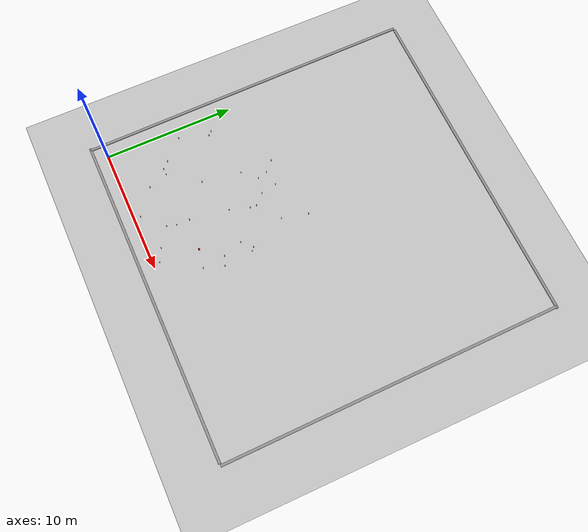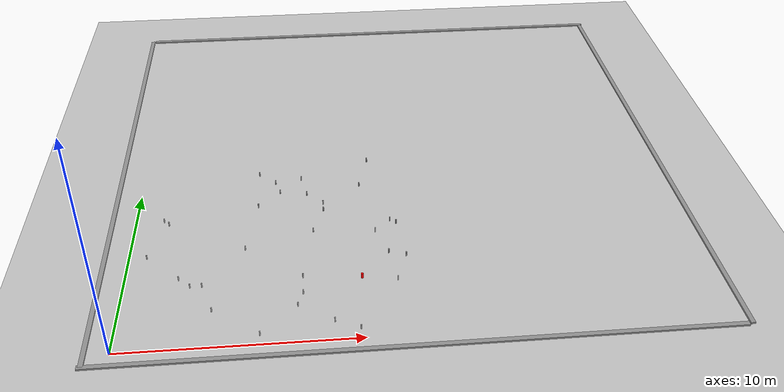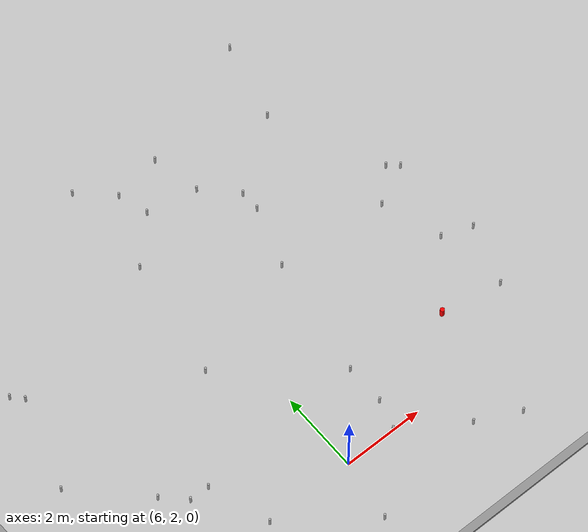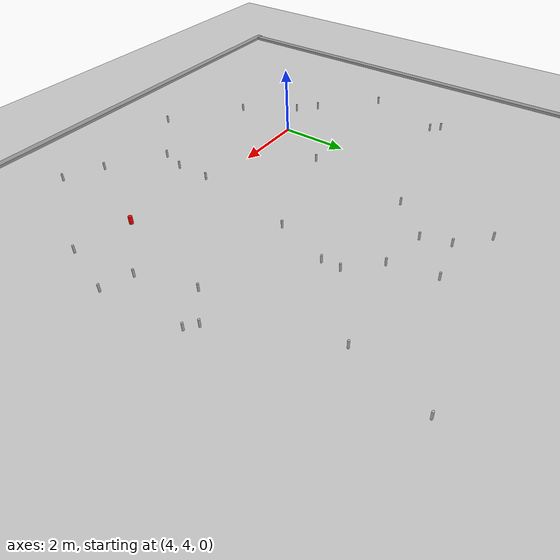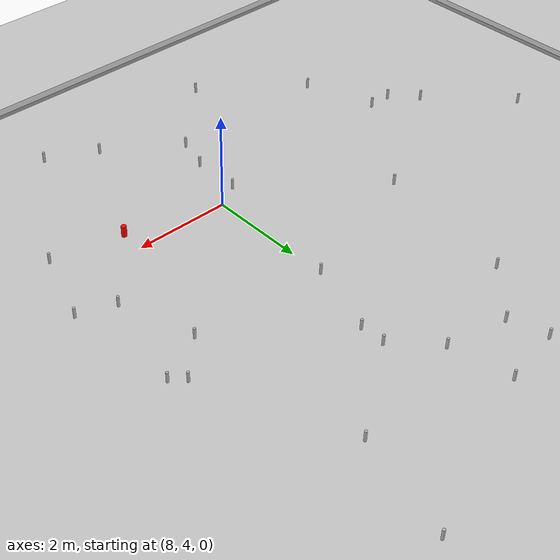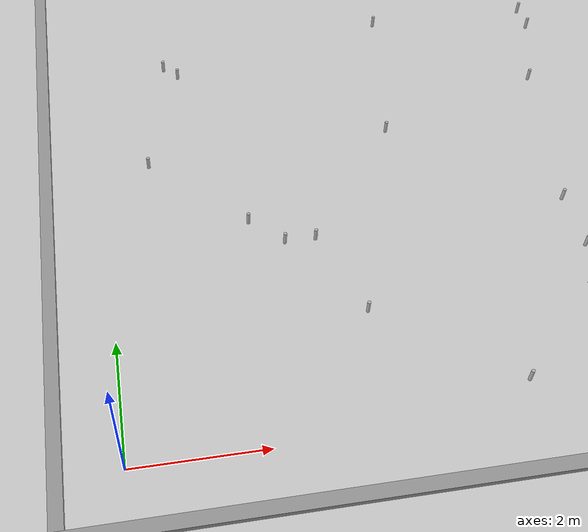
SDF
<sdf version="1.6">
 <world name="default">
  <light name="sun" type="directional">
   <pose>0 0 10 0 -0 0</pose>
   <diffuse>0.8 0.8 0.8 1</diffuse>
   <specular>0.1 0.1 0.1 1</specular>
   <attenuation>
    <range>1000</range>
    <constant>0.9</constant>
    <linear>0.01</linear>
    <quadratic>0.001</quadratic>
   </attenuation>
   <direction>-0.5 0.5 -1</direction>
  </light>
  <model name="ground_plane">
   <static>1</static>
   <link name="link">
    <collision name="collision">
     <geometry><plane><normal>0 0 1</normal><size>100 100</size></plane></geometry>
     <surface><friction><ode><mu>100</mu><mu2>50</mu2></ode></friction></surface>
    </collision>
    <visual name="visual">
     <cast_shadows>0</cast_shadows>
     <geometry><plane><normal>0 0 1</normal><size>100 100</size></plane></geometry>
     <material>
      <script><uri>file://media/materials/scripts/gazebo.material</uri><name>Gazebo/Grey</name></script>
     </material>
    </visual>
   </link>
  </model>
  <gravity>0 0 -9.8</gravity>
  <magnetic_field>6e-06 2.3e-05 -4.2e-05</magnetic_field>
  <atmosphere type="adiabatic"/>
  <physics name="default_physics" default="0" type="ode">
   <max_step_size>0.001</max_step_size>
   <real_time_factor>1</real_time_factor>
   <real_time_update_rate>1000</real_time_update_rate>
  </physics>
  <scene><ambient>0.4 0.4 0.4 1</ambient><background>0.7 0.7 0.7 1</background><shadows>1</shadows></scene>
  <spherical_coordinates>
   <surface_model>EARTH_WGS84</surface_model>
   <latitude_deg>0</latitude_deg>
   <longitude_deg>0</longitude_deg>
   <elevation>0</elevation>
   <heading_deg>0</heading_deg>
  </spherical_coordinates>
  <model name="goal">
   <static>0</static>
   <link name="link">
    <pose>0 0 0.115 0 -0 0</pose>
    <inertial>
     <mass>0.0005</mass>
     <inertia><ixx>0.00058</ixx><ixy>0</ixy><ixz>0</ixz><iyy>0.00058</iyy><iyz>0</iyz><izz>0.00019</izz></inertia>
    </inertial>
    <visual name="visual">
     <geometry><cylinder><radius>0.055</radius><length>0.23</length></cylinder></geometry>
     <material>
      <script>
       <uri>model://beer/materials/scripts</uri>
       <uri>model://beer/materials/textures</uri>
       <name>Beer/Diffuse</name>
      </script>
      <ambient>1 0 0 1</ambient>
      <diffuse>1 0 0 1</diffuse>
      <specular>0 0 0 1</specular>
      <emissive>0 0 0 1</emissive>
      <shader type="vertex"><normal_map>__default__</normal_map></shader>
     </material>
    </visual>
    <collision name="collision">
     <geometry><cylinder><radius>0.055</radius><length>0.23</length></cylinder></geometry>
     <surface>
      <friction>
       <ode><mu>1</mu><mu2>1</mu2><fdir1>0 0 0</fdir1><slip1>0</slip1><slip2>0</slip2></ode>
       <torsional>
        <coefficient>1</coefficient>
        <patch_radius>0</patch_radius>
        <surface_radius>0</surface_radius>
        <use_patch_radius>1</use_patch_radius>
        <ode><slip>0</slip></ode>
       </torsional>
      </friction>
      <bounce><restitution_coefficient>0</restitution_coefficient><threshold>1e+06</threshold></bounce>
      <contact>
       <collide_without_contact>0</collide_without_contact>
       <collide_without_contact_bitmask>1</collide_without_contact_bitmask>
       <collide_bitmask>1</collide_bitmask>
       <ode>
        <soft_cfm>0</soft_cfm>
        <soft_erp>0.2</soft_erp>
        <kp>1e+13</kp>
        <kd>1</kd>
        <max_vel>0.01</max_vel>
        <min_depth>0</min_depth>
       </ode>
       <bullet>
        <split_impulse>1</split_impulse>
        <split_impulse_penetration_threshold>-0.01</split_impulse_penetration_threshold>
        <soft_cfm>0</soft_cfm>
        <soft_erp>0.2</soft_erp>
        <kp>1e+13</kp>
        <kd>1</kd>
       </bullet>
      </contact>
     </surface>
    </collision>
   </link>
   <static>0</static>
   <pose>10.0 3.5 -9e-06 -1e-06 -4e-06 0</pose>
  </model>
  <model name="wall1">
   <static>1</static>
   <link name="link">
    <pose>0 0 0.42 0 -0 0</pose>
    <collision name="collision"><geometry><box><size>26 0.2 0.084</size></box></geometry></collision>
    <visual name="visual">
     <cast_shadows>0</cast_shadows>
     <geometry><box><size>26 0.2 0.084</size></box></geometry>
     <material>
      <script>
       <uri>model://grey_wall/materials/scripts</uri>
       <uri>model://grey_wall/materials/textures</uri>
       <name>vrc/grey_wall</name>
      </script>
     </material>
    </visual>
   </link>
   <pose>-1 12.0 0 0 -0 -1.55905</pose>
  </model>
  <model name="wall2">
   <static>1</static>
   <link name="link">
    <pose>0 0 0.42 0 -0 0</pose>
    <collision name="collision"><geometry><box><size>26 0.2 0.084</size></box></geometry></collision>
    <visual name="visual">
     <cast_shadows>0</cast_shadows>
     <geometry><box><size>26 0.2 0.084</size></box></geometry>
     <material>
      <script>
       <uri>model://grey_wall/materials/scripts</uri>
       <uri>model://grey_wall/materials/textures</uri>
       <name>vrc/grey_wall</name>
      </script>
     </material>
    </visual>
   </link>
   <pose>12.0 25.0 0 0 -0 0</pose>
  </model>
  <model name="wall3">
   <static>1</static>
   <link name="link">
    <pose>0 0 0.42 0 -0 0</pose>
    <collision name="collision"><geometry><box><size>26 0.2 0.084</size></box></geometry></collision>
    <visual name="visual">
     <cast_shadows>0</cast_shadows>
     <geometry><box><size>26 0.2 0.084</size></box></geometry>
     <material>
      <script>
       <uri>model://grey_wall/materials/scripts</uri>
       <uri>model://grey_wall/materials/textures</uri>
       <name>vrc/grey_wall</name>
      </script>
     </material>
    </visual>
   </link>
   <pose>25.0 12.0 0 0 -0 -1.55905</pose>
  </model>
  <model name="wall4">
   <static>1</static>
   <link name="link">
    <pose>0 0 0.42 0 -0 0</pose>
    <collision name="collision"><geometry><box><size>26 0.2 0.084</size></box></geometry></collision>
    <visual name="visual">
     <cast_shadows>0</cast_shadows>
     <geometry><box><size>26 0.2 0.084</size></box></geometry>
     <material>
      <script>
       <uri>model://grey_wall/materials/scripts</uri>
       <uri>model://grey_wall/materials/textures</uri>
       <name>vrc/grey_wall</name>
      </script>
     </material>
    </visual>
   </link>
   <pose>12.0 -1 0 0 -0 0</pose>
  </model>
  <model name="can_1">
   <link name="link">
    <pose>0 0 0.115 0 -0 0</pose>
    <inertial>
     <mass>0.39</mass>
     <inertia><ixx>0.00058</ixx><ixy>0</ixy><ixz>0</ixz><iyy>0.00058</iyy><iyz>0</iyz><izz>0.00019</izz></inertia>
    </inertial>
    <collision name="collision">
     <geometry><cylinder><radius>0.0275</radius><length>0.23</length></cylinder></geometry>
    </collision>
    <visual name="visual">
     <geometry><cylinder><radius>0.0275</radius><length>0.23</length></cylinder></geometry>
     <material>
      <script>
       <uri>model://beer/materials/scripts</uri>
       <uri>model://beer/materials/textures</uri>
       <name>Beer/Diffuse</name>
      </script>
     </material>
    </visual>
   </link>
   <pose>1.2579692069701476 8.0 -2e-06 1e-06 0 -9.5e-05</pose>
  </model>
  <model name="can_2">
   <link name="link">
    <pose>0 0 0.115 0 -0 0</pose>
    <inertial>
     <mass>0.39</mass>
     <inertia><ixx>0.00058</ixx><ixy>0</ixy><ixz>0</ixz><iyy>0.00058</iyy><iyz>0</iyz><izz>0.00019</izz></inertia>
    </inertial>
    <collision name="collision">
     <geometry><cylinder><radius>0.0275</radius><length>0.23</length></cylinder></geometry>
    </collision>
    <visual name="visual">
     <geometry><cylinder><radius>0.0275</radius><length>0.23</length></cylinder></geometry>
     <material>
      <script>
       <uri>model://beer/materials/scripts</uri>
       <uri>model://beer/materials/textures</uri>
       <name>Beer/Diffuse</name>
      </script>
     </material>
    </visual>
   </link>
   <pose>2.780565949185663 3.5 -2e-06 1e-06 0 -9.5e-05</pose>
  </model>
  <model name="can_3">
   <link name="link">
    <pose>0 0 0.115 0 -0 0</pose>
    <inertial>
     <mass>0.39</mass>
     <inertia><ixx>0.00058</ixx><ixy>0</ixy><ixz>0</ixz><iyy>0.00058</iyy><iyz>0</iyz><izz>0.00019</izz></inertia>
    </inertial>
    <collision name="collision">
     <geometry><cylinder><radius>0.0275</radius><length>0.23</length></cylinder></geometry>
    </collision>
    <visual name="visual">
     <geometry><cylinder><radius>0.0275</radius><length>0.23</length></cylinder></geometry>
     <material>
      <script>
       <uri>model://beer/materials/scripts</uri>
       <uri>model://beer/materials/textures</uri>
       <name>Beer/Diffuse</name>
      </script>
     </material>
    </visual>
   </link>
   <pose>10.77142383168097 6.5 -2e-06 1e-06 0 -9.5e-05</pose>
  </model>
  <model name="can_4">
   <link name="link">
    <pose>0 0 0.115 0 -0 0</pose>
    <inertial>
     <mass>0.39</mass>
     <inertia><ixx>0.00058</ixx><ixy>0</ixy><ixz>0</ixz><iyy>0.00058</iyy><iyz>0</iyz><izz>0.00019</izz></inertia>
    </inertial>
    <collision name="collision">
     <geometry><cylinder><radius>0.0275</radius><length>0.23</length></cylinder></geometry>
    </collision>
    <visual name="visual">
     <geometry><cylinder><radius>0.0275</radius><length>0.23</length></cylinder></geometry>
     <material>
      <script>
       <uri>model://beer/materials/scripts</uri>
       <uri>model://beer/materials/textures</uri>
       <name>Beer/Diffuse</name>
      </script>
     </material>
    </visual>
   </link>
   <pose>5.5 8.73675078889169 -2e-06 1e-06 0 -9.5e-05</pose>
  </model>
  <model name="can_5">
   <link name="link">
    <pose>0 0 0.115 0 -0 0</pose>
    <inertial>
     <mass>0.39</mass>
     <inertia><ixx>0.00058</ixx><ixy>0</ixy><ixz>0</ixz><iyy>0.00058</iyy><iyz>0</iyz><izz>0.00019</izz></inertia>
    </inertial>
    <collision name="collision">
     <geometry><cylinder><radius>0.0275</radius><length>0.23</length></cylinder></geometry>
    </collision>
    <visual name="visual">
     <geometry><cylinder><radius>0.0275</radius><length>0.23</length></cylinder></geometry>
     <material>
      <script>
       <uri>model://beer/materials/scripts</uri>
       <uri>model://beer/materials/textures</uri>
       <name>Beer/Diffuse</name>
      </script>
     </material>
    </visual>
   </link>
   <pose>6.2801286656901585 10.5 -2e-06 1e-06 0 -9.5e-05</pose>
  </model>
  <model name="can_6">
   <link name="link">
    <pose>0 0 0.115 0 -0 0</pose>
    <inertial>
     <mass>0.39</mass>
     <inertia><ixx>0.00058</ixx><ixy>0</ixy><ixz>0</ixz><iyy>0.00058</iyy><iyz>0</iyz><izz>0.00019</izz></inertia>
    </inertial>
    <collision name="collision">
     <geometry><cylinder><radius>0.0275</radius><length>0.23</length></cylinder></geometry>
    </collision>
    <visual name="visual">
     <geometry><cylinder><radius>0.0275</radius><length>0.23</length></cylinder></geometry>
     <material>
      <script>
       <uri>model://beer/materials/scripts</uri>
       <uri>model://beer/materials/textures</uri>
       <name>Beer/Diffuse</name>
      </script>
     </material>
    </visual>
   </link>
   <pose>10.255738920285136 10.0 -2e-06 1e-06 0 -9.5e-05</pose>
  </model>
  <model name="can_7">
   <link name="link">
    <pose>0 0 0.115 0 -0 0</pose>
    <inertial>
     <mass>0.39</mass>
     <inertia><ixx>0.00058</ixx><ixy>0</ixy><ixz>0</ixz><iyy>0.00058</iyy><iyz>0</iyz><izz>0.00019</izz></inertia>
    </inertial>
    <collision name="collision">
     <geometry><cylinder><radius>0.0275</radius><length>0.23</length></cylinder></geometry>
    </collision>
    <visual name="visual">
     <geometry><cylinder><radius>0.0275</radius><length>0.23</length></cylinder></geometry>
     <material>
      <script>
       <uri>model://beer/materials/scripts</uri>
       <uri>model://beer/materials/textures</uri>
       <name>Beer/Diffuse</name>
      </script>
     </material>
    </visual>
   </link>
   <pose>8.75039712617744 1.0 -2e-06 1e-06 0 -9.5e-05</pose>
  </model>
  <model name="can_8">
   <link name="link">
    <pose>0 0 0.115 0 -0 0</pose>
    <inertial>
     <mass>0.39</mass>
     <inertia><ixx>0.00058</ixx><ixy>0</ixy><ixz>0</ixz><iyy>0.00058</iyy><iyz>0</iyz><izz>0.00019</izz></inertia>
    </inertial>
    <collision name="collision">
     <geometry><cylinder><radius>0.0275</radius><length>0.23</length></cylinder></geometry>
    </collision>
    <visual name="visual">
     <geometry><cylinder><radius>0.0275</radius><length>0.23</length></cylinder></geometry>
     <material>
      <script>
       <uri>model://beer/materials/scripts</uri>
       <uri>model://beer/materials/textures</uri>
       <name>Beer/Diffuse</name>
      </script>
     </material>
    </visual>
   </link>
   <pose>2.2694477915008493 4.0 -2e-06 1e-06 0 -9.5e-05</pose>
  </model>
  <model name="can_9">
   <link name="link">
    <pose>0 0 0.115 0 -0 0</pose>
    <inertial>
     <mass>0.39</mass>
     <inertia><ixx>0.00058</ixx><ixy>0</ixy><ixz>0</ixz><iyy>0.00058</iyy><iyz>0</iyz><izz>0.00019</izz></inertia>
    </inertial>
    <collision name="collision">
     <geometry><cylinder><radius>0.0275</radius><length>0.23</length></cylinder></geometry>
    </collision>
    <visual name="visual">
     <geometry><cylinder><radius>0.0275</radius><length>0.23</length></cylinder></geometry>
     <material>
      <script>
       <uri>model://beer/materials/scripts</uri>
       <uri>model://beer/materials/textures</uri>
       <name>Beer/Diffuse</name>
      </script>
     </material>
    </visual>
   </link>
   <pose>5.765223673706494 0.5 -2e-06 1e-06 0 -9.5e-05</pose>
  </model>
  <model name="can_10">
   <link name="link">
    <pose>0 0 0.115 0 -0 0</pose>
    <inertial>
     <mass>0.39</mass>
     <inertia><ixx>0.00058</ixx><ixy>0</ixy><ixz>0</ixz><iyy>0.00058</iyy><iyz>0</iyz><izz>0.00019</izz></inertia>
    </inertial>
    <collision name="collision">
     <geometry><cylinder><radius>0.0275</radius><length>0.23</length></cylinder></geometry>
    </collision>
    <visual name="visual">
     <geometry><cylinder><radius>0.0275</radius><length>0.23</length></cylinder></geometry>
     <material>
      <script>
       <uri>model://beer/materials/scripts</uri>
       <uri>model://beer/materials/textures</uri>
       <name>Beer/Diffuse</name>
      </script>
     </material>
    </visual>
   </link>
   <pose>0.7715694979395369 5.5 -2e-06 1e-06 0 -9.5e-05</pose>
  </model>
  <model name="can_11">
   <link name="link">
    <pose>0 0 0.115 0 -0 0</pose>
    <inertial>
     <mass>0.39</mass>
     <inertia><ixx>0.00058</ixx><ixy>0</ixy><ixz>0</ixz><iyy>0.00058</iyy><iyz>0</iyz><izz>0.00019</izz></inertia>
    </inertial>
    <collision name="collision">
     <geometry><cylinder><radius>0.0275</radius><length>0.23</length></cylinder></geometry>
    </collision>
    <visual name="visual">
     <geometry><cylinder><radius>0.0275</radius><length>0.23</length></cylinder></geometry>
     <material>
      <script>
       <uri>model://beer/materials/scripts</uri>
       <uri>model://beer/materials/textures</uri>
       <name>Beer/Diffuse</name>
      </script>
     </material>
    </visual>
   </link>
   <pose>3.2779878772983664 3.5 -2e-06 1e-06 0 -9.5e-05</pose>
  </model>
  <model name="can_12">
   <link name="link">
    <pose>0 0 0.115 0 -0 0</pose>
    <inertial>
     <mass>0.39</mass>
     <inertia><ixx>0.00058</ixx><ixy>0</ixy><ixz>0</ixz><iyy>0.00058</iyy><iyz>0</iyz><izz>0.00019</izz></inertia>
    </inertial>
    <collision name="collision">
     <geometry><cylinder><radius>0.0275</radius><length>0.23</length></cylinder></geometry>
    </collision>
    <visual name="visual">
     <geometry><cylinder><radius>0.0275</radius><length>0.23</length></cylinder></geometry>
     <material>
      <script>
       <uri>model://beer/materials/scripts</uri>
       <uri>model://beer/materials/textures</uri>
       <name>Beer/Diffuse</name>
      </script>
     </material>
    </visual>
   </link>
   <pose>8.5 8.224149192978134 -2e-06 1e-06 0 -9.5e-05</pose>
  </model>
  <model name="can_13">
   <link name="link">
    <pose>0 0 0.115 0 -0 0</pose>
    <inertial>
     <mass>0.39</mass>
     <inertia><ixx>0.00058</ixx><ixy>0</ixy><ixz>0</ixz><iyy>0.00058</iyy><iyz>0</iyz><izz>0.00019</izz></inertia>
    </inertial>
    <collision name="collision">
     <geometry><cylinder><radius>0.0275</radius><length>0.23</length></cylinder></geometry>
    </collision>
    <visual name="visual">
     <geometry><cylinder><radius>0.0275</radius><length>0.23</length></cylinder></geometry>
     <material>
      <script>
       <uri>model://beer/materials/scripts</uri>
       <uri>model://beer/materials/textures</uri>
       <name>Beer/Diffuse</name>
      </script>
     </material>
    </visual>
   </link>
   <pose>5.5 11.233016680524662 -2e-06 1e-06 0 -9.5e-05</pose>
  </model>
  <model name="can_14">
   <link name="link">
    <pose>0 0 0.115 0 -0 0</pose>
    <inertial>
     <mass>0.39</mass>
     <inertia><ixx>0.00058</ixx><ixy>0</ixy><ixz>0</ixz><iyy>0.00058</iyy><iyz>0</iyz><izz>0.00019</izz></inertia>
    </inertial>
    <collision name="collision">
     <geometry><cylinder><radius>0.0275</radius><length>0.23</length></cylinder></geometry>
    </collision>
    <visual name="visual">
     <geometry><cylinder><radius>0.0275</radius><length>0.23</length></cylinder></geometry>
     <material>
      <script>
       <uri>model://beer/materials/scripts</uri>
       <uri>model://beer/materials/textures</uri>
       <name>Beer/Diffuse</name>
      </script>
     </material>
    </visual>
   </link>
   <pose>6.5 9.74310401049217 -2e-06 1e-06 0 -9.5e-05</pose>
  </model>
  <model name="can_15">
   <link name="link">
    <pose>0 0 0.115 0 -0 0</pose>
    <inertial>
     <mass>0.39</mass>
     <inertia><ixx>0.00058</ixx><ixy>0</ixy><ixz>0</ixz><iyy>0.00058</iyy><iyz>0</iyz><izz>0.00019</izz></inertia>
    </inertial>
    <collision name="collision">
     <geometry><cylinder><radius>0.0275</radius><length>0.23</length></cylinder></geometry>
    </collision>
    <visual name="visual">
     <geometry><cylinder><radius>0.0275</radius><length>0.23</length></cylinder></geometry>
     <material>
      <script>
       <uri>model://beer/materials/scripts</uri>
       <uri>model://beer/materials/textures</uri>
       <name>Beer/Diffuse</name>
      </script>
     </material>
    </visual>
   </link>
   <pose>11.259335235126617 5.0 -2e-06 1e-06 0 -9.5e-05</pose>
  </model>
  <model name="can_16">
   <link name="link">
    <pose>0 0 0.115 0 -0 0</pose>
    <inertial>
     <mass>0.39</mass>
     <inertia><ixx>0.00058</ixx><ixy>0</ixy><ixz>0</ixz><iyy>0.00058</iyy><iyz>0</iyz><izz>0.00019</izz></inertia>
    </inertial>
    <collision name="collision">
     <geometry><cylinder><radius>0.0275</radius><length>0.23</length></cylinder></geometry>
    </collision>
    <visual name="visual">
     <geometry><cylinder><radius>0.0275</radius><length>0.23</length></cylinder></geometry>
     <material>
      <script>
       <uri>model://beer/materials/scripts</uri>
       <uri>model://beer/materials/textures</uri>
       <name>Beer/Diffuse</name>
      </script>
     </material>
    </visual>
   </link>
   <pose>7.5 10.71563644033695 -2e-06 1e-06 0 -9.5e-05</pose>
  </model>
  <model name="can_17">
   <link name="link">
    <pose>0 0 0.115 0 -0 0</pose>
    <inertial>
     <mass>0.39</mass>
     <inertia><ixx>0.00058</ixx><ixy>0</ixy><ixz>0</ixz><iyy>0.00058</iyy><iyz>0</iyz><izz>0.00019</izz></inertia>
    </inertial>
    <collision name="collision">
     <geometry><cylinder><radius>0.0275</radius><length>0.23</length></cylinder></geometry>
    </collision>
    <visual name="visual">
     <geometry><cylinder><radius>0.0275</radius><length>0.23</length></cylinder></geometry>
     <material>
      <script>
       <uri>model://beer/materials/scripts</uri>
       <uri>model://beer/materials/textures</uri>
       <name>Beer/Diffuse</name>
      </script>
     </material>
    </visual>
   </link>
   <pose>7.7548349756954185 9.5 -2e-06 1e-06 0 -9.5e-05</pose>
  </model>
  <model name="can_18">
   <link name="link">
    <pose>0 0 0.115 0 -0 0</pose>
    <inertial>
     <mass>0.39</mass>
     <inertia><ixx>0.00058</ixx><ixy>0</ixy><ixz>0</ixz><iyy>0.00058</iyy><iyz>0</iyz><izz>0.00019</izz></inertia>
    </inertial>
    <collision name="collision">
     <geometry><cylinder><radius>0.0275</radius><length>0.23</length></cylinder></geometry>
    </collision>
    <visual name="visual">
     <geometry><cylinder><radius>0.0275</radius><length>0.23</length></cylinder></geometry>
     <material>
      <script>
       <uri>model://beer/materials/scripts</uri>
       <uri>model://beer/materials/textures</uri>
       <name>Beer/Diffuse</name>
      </script>
     </material>
    </visual>
   </link>
   <pose>8.0 6.725827446424753 -2e-06 1e-06 0 -9.5e-05</pose>
  </model>
  <model name="can_19">
   <link name="link">
    <pose>0 0 0.115 0 -0 0</pose>
    <inertial>
     <mass>0.39</mass>
     <inertia><ixx>0.00058</ixx><ixy>0</ixy><ixz>0</ixz><iyy>0.00058</iyy><iyz>0</iyz><izz>0.00019</izz></inertia>
    </inertial>
    <collision name="collision">
     <geometry><cylinder><radius>0.0275</radius><length>0.23</length></cylinder></geometry>
    </collision>
    <visual name="visual">
     <geometry><cylinder><radius>0.0275</radius><length>0.23</length></cylinder></geometry>
     <material>
      <script>
       <uri>model://beer/materials/scripts</uri>
       <uri>model://beer/materials/textures</uri>
       <name>Beer/Diffuse</name>
      </script>
     </material>
    </visual>
   </link>
   <pose>11.5 7.2183927445939515 -2e-06 1e-06 0 -9.5e-05</pose>
  </model>
  <model name="can_20">
   <link name="link">
    <pose>0 0 0.115 0 -0 0</pose>
    <inertial>
     <mass>0.39</mass>
     <inertia><ixx>0.00058</ixx><ixy>0</ixy><ixz>0</ixz><iyy>0.00058</iyy><iyz>0</iyz><izz>0.00019</izz></inertia>
    </inertial>
    <collision name="collision">
     <geometry><cylinder><radius>0.0275</radius><length>0.23</length></cylinder></geometry>
    </collision>
    <visual name="visual">
     <geometry><cylinder><radius>0.0275</radius><length>0.23</length></cylinder></geometry>
     <material>
      <script>
       <uri>model://beer/materials/scripts</uri>
       <uri>model://beer/materials/textures</uri>
       <name>Beer/Diffuse</name>
      </script>
     </material>
    </visual>
   </link>
   <pose>7.5 3.72795529795379 -2e-06 1e-06 0 -9.5e-05</pose>
  </model>
  <model name="can_21">
   <link name="link">
    <pose>0 0 0.115 0 -0 0</pose>
    <inertial>
     <mass>0.39</mass>
     <inertia><ixx>0.00058</ixx><ixy>0</ixy><ixz>0</ixz><iyy>0.00058</iyy><iyz>0</iyz><izz>0.00019</izz></inertia>
    </inertial>
    <collision name="collision">
     <geometry><cylinder><radius>0.0275</radius><length>0.23</length></cylinder></geometry>
    </collision>
    <visual name="visual">
     <geometry><cylinder><radius>0.0275</radius><length>0.23</length></cylinder></geometry>
     <material>
      <script>
       <uri>model://beer/materials/scripts</uri>
       <uri>model://beer/materials/textures</uri>
       <name>Beer/Diffuse</name>
      </script>
     </material>
    </visual>
   </link>
   <pose>11.75960077215253 7.0 -2e-06 1e-06 0 -9.5e-05</pose>
  </model>
  <model name="can_22">
   <link name="link">
    <pose>0 0 0.115 0 -0 0</pose>
    <inertial>
     <mass>0.39</mass>
     <inertia><ixx>0.00058</ixx><ixy>0</ixy><ixz>0</ixz><iyy>0.00058</iyy><iyz>0</iyz><izz>0.00019</izz></inertia>
    </inertial>
    <collision name="collision">
     <geometry><cylinder><radius>0.0275</radius><length>0.23</length></cylinder></geometry>
    </collision>
    <visual name="visual">
     <geometry><cylinder><radius>0.0275</radius><length>0.23</length></cylinder></geometry>
     <material>
      <script>
       <uri>model://beer/materials/scripts</uri>
       <uri>model://beer/materials/textures</uri>
       <name>Beer/Diffuse</name>
      </script>
     </material>
    </visual>
   </link>
   <pose>11.5 3.229799323194818 -2e-06 1e-06 0 -9.5e-05</pose>
  </model>
  <model name="can_23">
   <link name="link">
    <pose>0 0 0.115 0 -0 0</pose>
    <inertial>
     <mass>0.39</mass>
     <inertia><ixx>0.00058</ixx><ixy>0</ixy><ixz>0</ixz><iyy>0.00058</iyy><iyz>0</iyz><izz>0.00019</izz></inertia>
    </inertial>
    <collision name="collision">
     <geometry><cylinder><radius>0.0275</radius><length>0.23</length></cylinder></geometry>
    </collision>
    <visual name="visual">
     <geometry><cylinder><radius>0.0275</radius><length>0.23</length></cylinder></geometry>
     <material>
      <script>
       <uri>model://beer/materials/scripts</uri>
       <uri>model://beer/materials/textures</uri>
       <name>Beer/Diffuse</name>
      </script>
     </material>
    </visual>
   </link>
   <pose>9.775607304638893 0.5 -2e-06 1e-06 0 -9.5e-05</pose>
  </model>
  <model name="can_24">
   <link name="link">
    <pose>0 0 0.115 0 -0 0</pose>
    <inertial>
     <mass>0.39</mass>
     <inertia><ixx>0.00058</ixx><ixy>0</ixy><ixz>0</ixz><iyy>0.00058</iyy><iyz>0</iyz><izz>0.00019</izz></inertia>
    </inertial>
    <collision name="collision">
     <geometry><cylinder><radius>0.0275</radius><length>0.23</length></cylinder></geometry>
    </collision>
    <visual name="visual">
     <geometry><cylinder><radius>0.0275</radius><length>0.23</length></cylinder></geometry>
     <material>
      <script>
       <uri>model://beer/materials/scripts</uri>
       <uri>model://beer/materials/textures</uri>
       <name>Beer/Diffuse</name>
      </script>
     </material>
    </visual>
   </link>
   <pose>3.7749246560926433 2.0 -2e-06 1e-06 0 -9.5e-05</pose>
  </model>
  <model name="can_25">
   <link name="link">
    <pose>0 0 0.115 0 -0 0</pose>
    <inertial>
     <mass>0.39</mass>
     <inertia><ixx>0.00058</ixx><ixy>0</ixy><ixz>0</ixz><iyy>0.00058</iyy><iyz>0</iyz><izz>0.00019</izz></inertia>
    </inertial>
    <collision name="collision">
     <geometry><cylinder><radius>0.0275</radius><length>0.23</length></cylinder></geometry>
    </collision>
    <visual name="visual">
     <geometry><cylinder><radius>0.0275</radius><length>0.23</length></cylinder></geometry>
     <material>
      <script>
       <uri>model://beer/materials/scripts</uri>
       <uri>model://beer/materials/textures</uri>
       <name>Beer/Diffuse</name>
      </script>
     </material>
    </visual>
   </link>
   <pose>10.754017959616927 12.0 -2e-06 1e-06 0 -9.5e-05</pose>
  </model>
  <model name="can_26">
   <link name="link">
    <pose>0 0 0.115 0 -0 0</pose>
    <inertial>
     <mass>0.39</mass>
     <inertia><ixx>0.00058</ixx><ixy>0</ixy><ixz>0</ixz><iyy>0.00058</iyy><iyz>0</iyz><izz>0.00019</izz></inertia>
    </inertial>
    <collision name="collision">
     <geometry><cylinder><radius>0.0275</radius><length>0.23</length></cylinder></geometry>
    </collision>
    <visual name="visual">
     <geometry><cylinder><radius>0.0275</radius><length>0.23</length></cylinder></geometry>
     <material>
      <script>
       <uri>model://beer/materials/scripts</uri>
       <uri>model://beer/materials/textures</uri>
       <name>Beer/Diffuse</name>
      </script>
     </material>
    </visual>
   </link>
   <pose>7.27758040666403 2.0 -2e-06 1e-06 0 -9.5e-05</pose>
  </model>
  <model name="can_27">
   <link name="link">
    <pose>0 0 0.115 0 -0 0</pose>
    <inertial>
     <mass>0.39</mass>
     <inertia><ixx>0.00058</ixx><ixy>0</ixy><ixz>0</ixz><iyy>0.00058</iyy><iyz>0</iyz><izz>0.00019</izz></inertia>
    </inertial>
    <collision name="collision">
     <geometry><cylinder><radius>0.0275</radius><length>0.23</length></cylinder></geometry>
    </collision>
    <visual name="visual">
     <geometry><cylinder><radius>0.0275</radius><length>0.23</length></cylinder></geometry>
     <material>
      <script>
       <uri>model://beer/materials/scripts</uri>
       <uri>model://beer/materials/textures</uri>
       <name>Beer/Diffuse</name>
      </script>
     </material>
    </visual>
   </link>
   <pose>12.0 4.732764819253284 -2e-06 1e-06 0 -9.5e-05</pose>
  </model>
  <model name="can_28">
   <link name="link">
    <pose>0 0 0.115 0 -0 0</pose>
    <inertial>
     <mass>0.39</mass>
     <inertia><ixx>0.00058</ixx><ixy>0</ixy><ixz>0</ixz><iyy>0.00058</iyy><iyz>0</iyz><izz>0.00019</izz></inertia>
    </inertial>
    <collision name="collision">
     <geometry><cylinder><radius>0.0275</radius><length>0.23</length></cylinder></geometry>
    </collision>
    <visual name="visual">
     <geometry><cylinder><radius>0.0275</radius><length>0.23</length></cylinder></geometry>
     <material>
      <script>
       <uri>model://beer/materials/scripts</uri>
       <uri>model://beer/materials/textures</uri>
       <name>Beer/Diffuse</name>
      </script>
     </material>
    </visual>
   </link>
   <pose>1.5 7.739256627367971 -2e-06 1e-06 0 -9.5e-05</pose>
  </model>
  <model name="can_29">
   <link name="link">
    <pose>0 0 0.115 0 -0 0</pose>
    <inertial>
     <mass>0.39</mass>
     <inertia><ixx>0.00058</ixx><ixy>0</ixy><ixz>0</ixz><iyy>0.00058</iyy><iyz>0</iyz><izz>0.00019</izz></inertia>
    </inertial>
    <collision name="collision">
     <geometry><cylinder><radius>0.0275</radius><length>0.23</length></cylinder></geometry>
    </collision>
    <visual name="visual">
     <geometry><cylinder><radius>0.0275</radius><length>0.23</length></cylinder></geometry>
     <material>
      <script>
       <uri>model://beer/materials/scripts</uri>
       <uri>model://beer/materials/textures</uri>
       <name>Beer/Diffuse</name>
      </script>
     </material>
    </visual>
   </link>
   <pose>8.5 8.732883960048369 -2e-06 1e-06 0 -9.5e-05</pose>
  </model>
  <model name="can_30">
   <link name="link">
    <pose>0 0 0.115 0 -0 0</pose>
    <inertial>
     <mass>0.39</mass>
     <inertia><ixx>0.00058</ixx><ixy>0</ixy><ixz>0</ixz><iyy>0.00058</iyy><iyz>0</iyz><izz>0.00019</izz></inertia>
    </inertial>
    <collision name="collision">
     <geometry><cylinder><radius>0.0275</radius><length>0.23</length></cylinder></geometry>
    </collision>
    <visual name="visual">
     <geometry><cylinder><radius>0.0275</radius><length>0.23</length></cylinder></geometry>
     <material>
      <script>
       <uri>model://beer/materials/scripts</uri>
       <uri>model://beer/materials/textures</uri>
       <name>Beer/Diffuse</name>
      </script>
     </material>
    </visual>
   </link>
   <pose>5.0 5.746050741016059 -2e-06 1e-06 0 -9.5e-05</pose>
  </model>
  <model name="can_31">
   <link name="link">
    <pose>0 0 0.115 0 -0 0</pose>
    <inertial>
     <mass>0.39</mass>
     <inertia><ixx>0.00058</ixx><ixy>0</ixy><ixz>0</ixz><iyy>0.00058</iyy><iyz>0</iyz><izz>0.00019</izz></inertia>
    </inertial>
    <collision name="collision">
     <geometry><cylinder><radius>0.0275</radius><length>0.23</length></cylinder></geometry>
    </collision>
    <visual name="visual">
     <geometry><cylinder><radius>0.0275</radius><length>0.23</length></cylinder></geometry>
     <material>
      <script>
       <uri>model://beer/materials/scripts</uri>
       <uri>model://beer/materials/textures</uri>
       <name>Beer/Diffuse</name>
      </script>
     </material>
    </visual>
   </link>
   <pose>7.5 2.7202342180587062 -2e-06 1e-06 0 -9.5e-05</pose>
  </model>
 </world>
</sdf>
